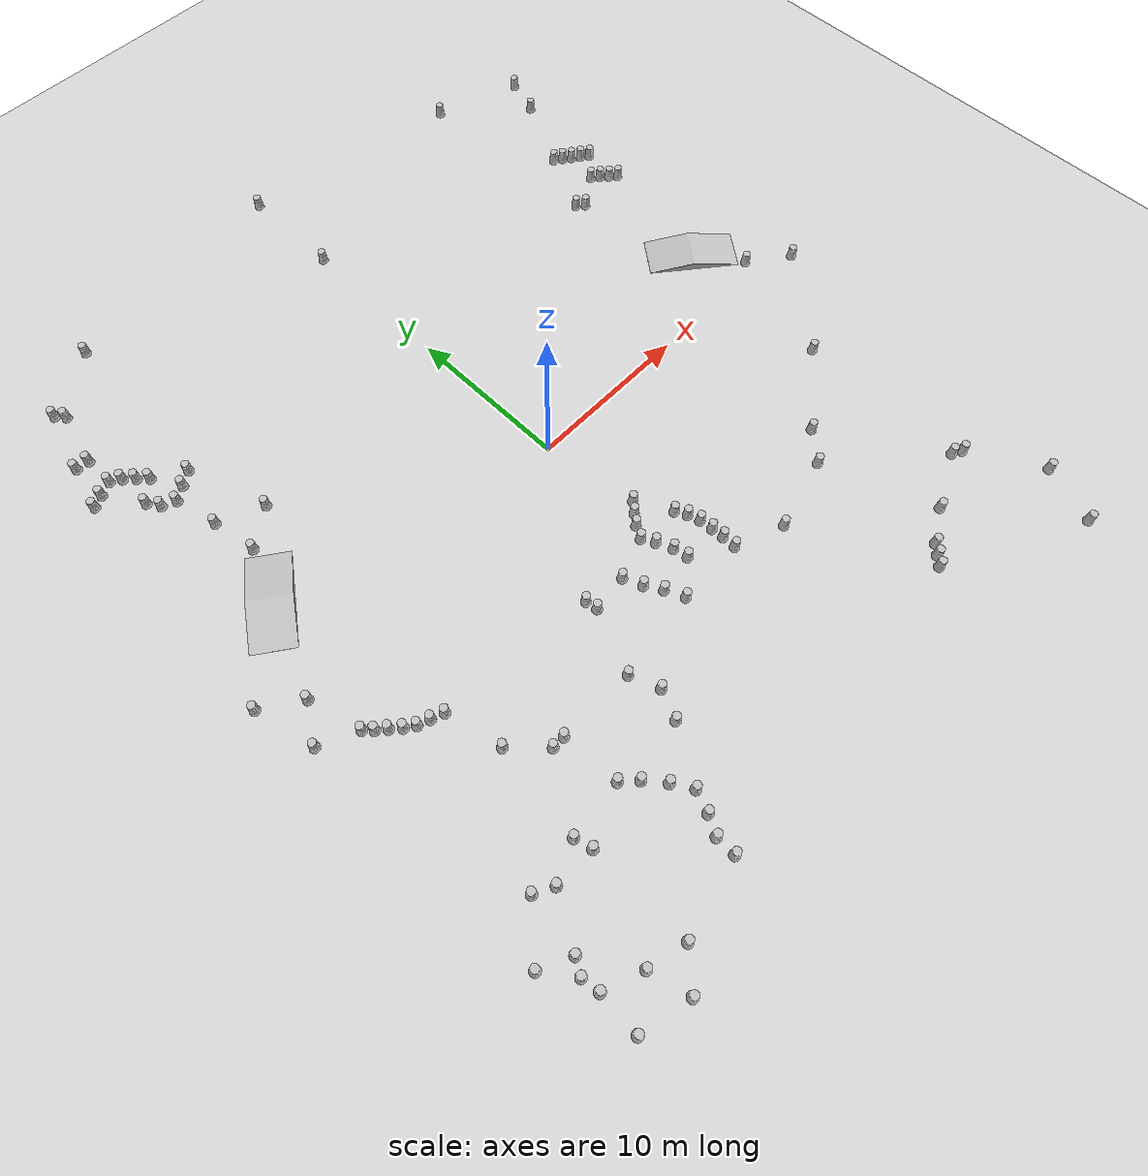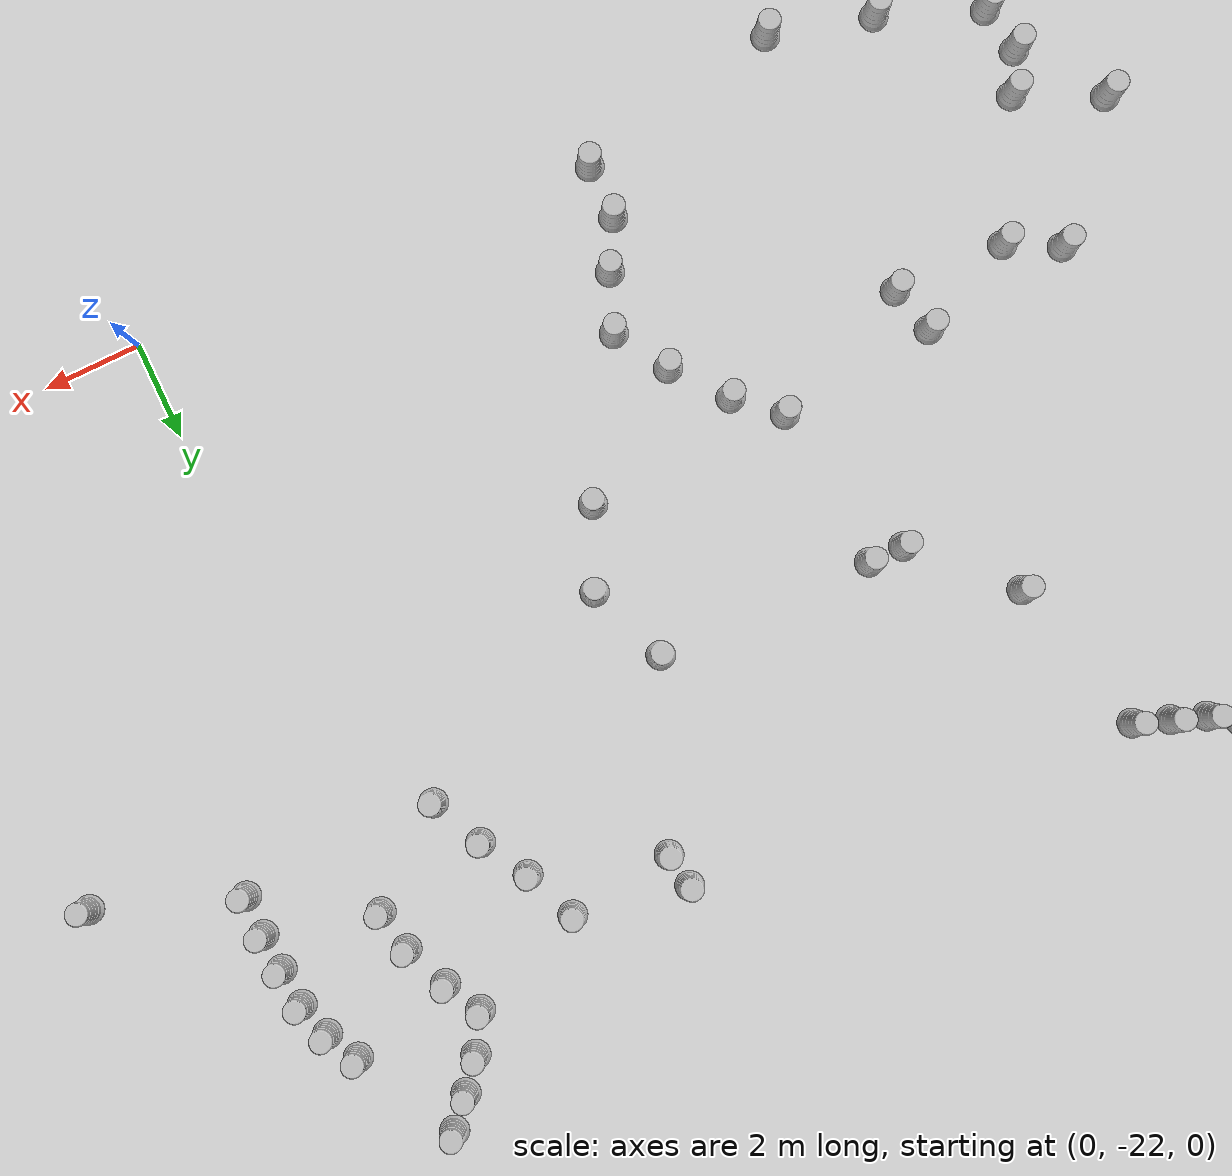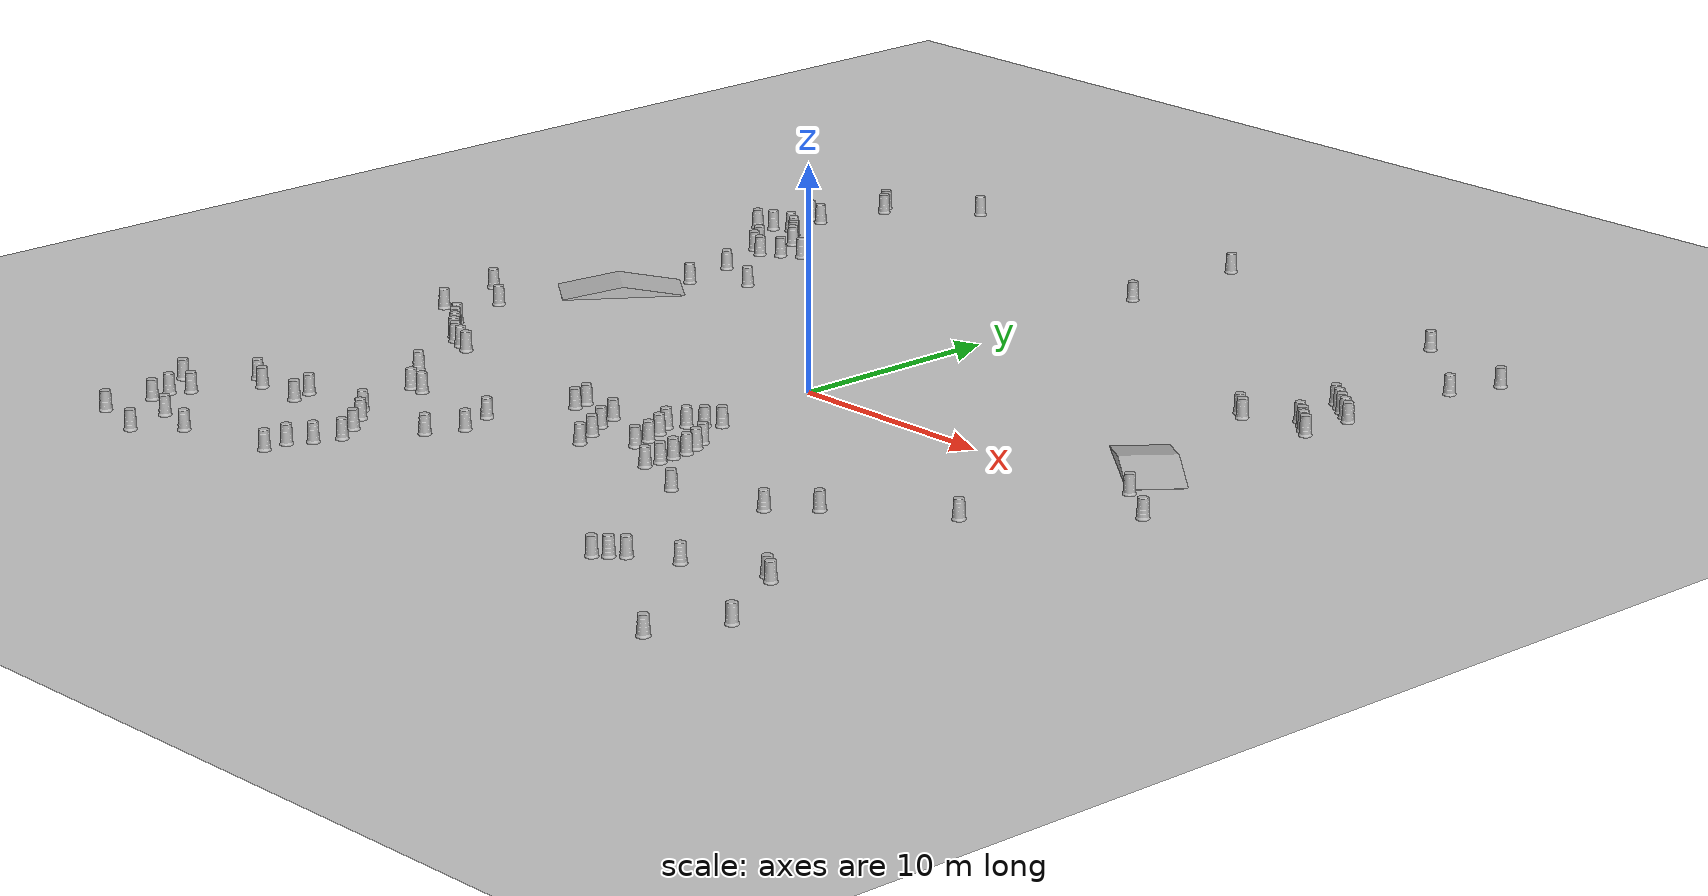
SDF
<?xml version="1.0" ?>
<sdf version="1.4">
  <world name="default">
    <scene>
      <sky>
      </sky>
       <ambient>1.0 1.0 1.0 1.0</ambient>
    </scene>

    <gui>
      <camera name="user_camera">
        <pose>0 42.9 25 0 0.8 -1.57</pose>
      </camera>
    </gui>

    <!-- A global light source -->
    <include>
      <uri>model://urdf/models/sun</uri>
    </include>
    <!-- A ground plane -->
    <include>
      <uri>model://urdf/models/autonav</uri>
    </include> -->
    <!-- ramps -->
    <include>
      <uri>model://urdf/models/ramp</uri>
      <name>ramp_0</name> <!-- THE NAME MUST BE UNIQUE-->
      <pose>16.361 3.674 0 0 -0 -0.670</pose>
    </include>
    <include>
      <uri>model://urdf/models/ramp</uri>
      <name>ramp_1</name> <!-- THE NAME MUST BE UNIQUE-->
      <pose>-16.608 3.804 0 0 -0 0.955</pose>
    </include>
    <!-- barrels_lows -->
    <include>
      <uri>model://urdf/models/barrels_low</uri>
      <name>barrels_low_0</name> <!-- THE NAME MUST BE UNIQUE-->
      <pose>0 19.6 0 0 -0 0</pose>
    </include>
    <include>
      <uri>model://urdf/models/barrels_low</uri>
      <name>barrels_low_1</name> <!-- THE NAME MUST BE UNIQUE-->
      <pose>0 26 0 0 -0 0</pose>
    </include>
    <include>
      <uri>model://urdf/models/barrels_low</uri>
      <name>barrels_low_2</name> <!-- THE NAME MUST BE UNIQUE-->
      <pose>13.787 23.878 0 0 -0 0</pose>
    </include>
    <include>
      <uri>model://urdf/models/barrels_low</uri>
      <name>barrels_low_3</name> <!-- THE NAME MUST BE UNIQUE-->
      <pose>19.181 22.189 0 0 -0 0</pose>
    </include>
    <include>
      <uri>model://urdf/models/barrels_low</uri>
      <name>barrels_low_4</name> <!-- THE NAME MUST BE UNIQUE-->
      <pose>18.388 19.827 0 0 -0 0</pose>
    </include>
    <include>
      <uri>model://urdf/models/barrels_low</uri>
      <name>barrels_low_5</name> <!-- THE NAME MUST BE UNIQUE-->
      <pose>16.033 15.308 0 0 -0 0</pose>
    </include>
    <include>
      <uri>model://urdf/models/barrels_low</uri>
      <name>barrels_low_6</name> <!-- THE NAME MUST BE UNIQUE-->
      <pose>16.514 14.981 0 0 -0 0</pose>
    </include>
    <include>
      <uri>model://urdf/models/barrels_low</uri>
      <name>barrels_low_7</name> <!-- THE NAME MUST BE UNIQUE-->
      <pose>16.988 14.623 0 0 -0 0</pose>
    </include>
    <include>
      <uri>model://urdf/models/barrels_low</uri>
      <name>barrels_low_8</name> <!-- THE NAME MUST BE UNIQUE-->
      <pose>17.482 14.271 0 0 -0 0</pose>
    </include>
    <include>
      <uri>model://urdf/models/barrels_low</uri>
      <name>barrels_low_9</name> <!-- THE NAME MUST BE UNIQUE-->
      <pose>17.963 13.917 0 0 -0 0</pose>
    </include>
    <include>
      <uri>model://urdf/models/barrels_low</uri>
      <name>barrels_low_10</name> <!-- THE NAME MUST BE UNIQUE-->
      <pose>17.932 11.339 0 0 -0 0</pose>
    </include>
    <include>
      <uri>model://urdf/models/barrels_low</uri>
      <name>barrels_low_11</name> <!-- THE NAME MUST BE UNIQUE-->
      <pose>17.489 11.714 0 0 -0 0</pose>
    </include>
    <include>
      <uri>model://urdf/models/barrels_low</uri>
      <name>barrels_low_12</name> <!-- THE NAME MUST BE UNIQUE-->
      <pose>17.053 12.108 0 0 -0 0</pose>
    </include>
    <include>
      <uri>model://urdf/models/barrels_low</uri>
      <name>barrels_low_13</name> <!-- THE NAME MUST BE UNIQUE-->
      <pose>16.587 12.475 0 0 -0 0</pose>
    </include>
    <include>
      <uri>model://urdf/models/barrels_low</uri>
      <name>barrels_low_14</name> <!-- THE NAME MUST BE UNIQUE-->
      <pose>14.138 11.459 0 0 -0 0</pose>
    </include>
    <include>
      <uri>model://urdf/models/barrels_low</uri>
      <name>barrels_low_15</name> <!-- THE NAME MUST BE UNIQUE-->
      <pose>14.620 11.077 0 0 -0 0</pose>
    </include>
    <include>
      <uri>model://urdf/models/barrels_low</uri>
      <name>barrels_low_16</name> <!-- THE NAME MUST BE UNIQUE-->
      <pose>-6.646 -12.089 0 0 -0 0</pose>
    </include>
    <include>
      <uri>model://urdf/models/barrels_low</uri>
      <name>barrels_low_17</name> <!-- THE NAME MUST BE UNIQUE-->
      <pose>-6.015 -13.752 0 0 -0 0</pose>
    </include>
    <include>
      <uri>model://urdf/models/barrels_low</uri>
      <name>barrels_low_18</name> <!-- THE NAME MUST BE UNIQUE-->
      <pose>18.128 0.756 0 0 -0 0</pose>
    </include>
    <include>
      <uri>model://urdf/models/barrels_low</uri>
      <name>barrels_low_19</name> <!-- THE NAME MUST BE UNIQUE-->
      <pose>20.533 -0.955 0 0 -0 0</pose>
    </include>
    <include>
      <uri>model://urdf/models/barrels_low</uri>
      <name>barrels_low_20</name> <!-- THE NAME MUST BE UNIQUE-->
      <pose>15.699 -6.357 0 0 -0 0</pose>
    </include>
    <include>
      <uri>model://urdf/models/barrels_low</uri>
      <name>barrels_low_21</name> <!-- THE NAME MUST BE UNIQUE-->
      <pose>11.253 -9.721 0 0 -0 0</pose>
    </include>
    <include>
      <uri>model://urdf/models/barrels_low</uri>
      <name>barrels_low_22</name> <!-- THE NAME MUST BE UNIQUE-->
      <pose>15.437 -16.289 0 0 -0 0</pose>
    </include>
    <include>
      <uri>model://urdf/models/barrels_low</uri>
      <name>barrels_low_23</name> <!-- THE NAME MUST BE UNIQUE-->
      <pose>15.988 -16.610 0 0 -0 0</pose>
    </include>
    <include>
      <uri>model://urdf/models/barrels_low</uri>
      <name>barrels_low_24</name> <!-- THE NAME MUST BE UNIQUE-->
      <pose>18.360 -20.697 0 0 -0 0</pose>
    </include>
    <include>
      <uri>model://urdf/models/barrels_low</uri>
      <name>barrels_low_25</name> <!-- THE NAME MUST BE UNIQUE-->
      <pose>17.072 -23.944 0 0 -0 0</pose>
    </include>
    <include>
      <uri>model://urdf/models/barrels_low</uri>
      <name>barrels_low_26</name> <!-- THE NAME MUST BE UNIQUE-->
      <pose>12.114 -17.789 0 0 -0 0</pose>
    </include>
    <include>
      <uri>model://urdf/models/barrels_low</uri>
      <name>barrels_low_27</name> <!-- THE NAME MUST BE UNIQUE-->
      <pose>10.155 -18.839 0 0 -0 0</pose>
    </include>
    <include>
      <uri>model://urdf/models/barrels_low</uri>
      <name>barrels_low_28</name> <!-- THE NAME MUST BE UNIQUE-->
      <pose>9.652 -19.311 0 0 -0 0</pose>
    </include>
    <include>
      <uri>model://urdf/models/barrels_low</uri>
      <name>barrels_low_29</name> <!-- THE NAME MUST BE UNIQUE-->
      <pose>9.181 -19.775 0 0 -0 0</pose>
    </include>
    <include>
      <uri>model://urdf/models/barrels_low</uri>
      <name>barrels_low_30</name> <!-- THE NAME MUST BE UNIQUE-->
      <pose>9.742 -11.323 0 0 -0 0</pose>
    </include>
    <include>
      <uri>model://urdf/models/barrels_low</uri>
      <name>barrels_low_31</name> <!-- THE NAME MUST BE UNIQUE-->
      <pose>5.393 -12.401 0 0 -0 0</pose>
    </include>
    <include>
      <uri>model://urdf/models/barrels_low</uri>
      <name>barrels_low_32</name> <!-- THE NAME MUST BE UNIQUE-->
      <pose>2.557 -11.338 0 0 -0 0</pose>
    </include>
    <include>
      <uri>model://urdf/models/barrels_low</uri>
      <name>barrels_low_33</name> <!-- THE NAME MUST BE UNIQUE-->
      <pose>2.567 -10.527 0 0 -0 0</pose>
    </include>
    <include>
      <uri>model://urdf/models/barrels_low</uri>
      <name>barrels_low_34</name> <!-- THE NAME MUST BE UNIQUE-->
      <pose>2.523 -9.782 0 0 -0 0</pose>
    </include>
    <include>
      <uri>model://urdf/models/barrels_low</uri>
      <name>barrels_low_35</name> <!-- THE NAME MUST BE UNIQUE-->
      <pose>2.458 -9.008 0 0 -0 0</pose>
    </include>
    <include>
      <uri>model://urdf/models/barrels_low</uri>
      <name>barrels_low_36</name> <!-- THE NAME MUST BE UNIQUE-->
      <pose>2.246 -8.299 0 0 -0 0</pose>
    </include>
    <include>
      <uri>model://urdf/models/barrels_low</uri>
      <name>barrels_low_37</name> <!-- THE NAME MUST BE UNIQUE-->
      <pose>1.901 -7.644 0 0 -0 0</pose>
    </include>
    <include>
      <uri>model://urdf/models/barrels_low</uri>
      <name>barrels_low_38</name> <!-- THE NAME MUST BE UNIQUE-->
      <pose>0.346 -9.950 0 0 -0 0</pose>
    </include>
    <include>
      <uri>model://urdf/models/barrels_low</uri>
      <name>barrels_low_39</name> <!-- THE NAME MUST BE UNIQUE-->
      <pose>0.195 -9.101 0 0 -0 0</pose>
    </include>
    <include>
      <uri>model://urdf/models/barrels_low</uri>
      <name>barrels_low_40</name> <!-- THE NAME MUST BE UNIQUE-->
      <pose>-0.195 -8.180 0 0 -0 0</pose>
    </include>
    <include>
      <uri>model://urdf/models/barrels_low</uri>
      <name>barrels_low_41</name> <!-- THE NAME MUST BE UNIQUE-->
      <pose>-0.592 -7.453 0 0 -0 0</pose>
    </include>
    <include>
      <uri>model://urdf/models/barrels_low</uri>
      <name>barrels_low_42</name> <!-- THE NAME MUST BE UNIQUE-->
      <pose>-0.151 -6.725 0 0 -0 0</pose>
    </include>
    <include>
      <uri>model://urdf/models/barrels_low</uri>
      <name>barrels_low_43</name> <!-- THE NAME MUST BE UNIQUE-->
      <pose>0.327 -6.152 0 0 -0 0</pose>
    </include>
    <include>
      <uri>model://urdf/models/barrels_low</uri>
      <name>barrels_low_44</name> <!-- THE NAME MUST BE UNIQUE-->
      <pose>0.822 -5.608 0 0 -0 0</pose>
    </include>
    <include>
      <uri>model://urdf/models/barrels_low</uri>
      <name>barrels_low_45</name> <!-- THE NAME MUST BE UNIQUE-->
      <pose>-1.450 -11.406 0 0 -0 0</pose>
    </include>
    <include>
      <uri>model://urdf/models/barrels_low</uri>
      <name>barrels_low_46</name> <!-- THE NAME MUST BE UNIQUE-->
      <pose>-1.947 -10.326 0 0 -0 0</pose>
    </include>
    <include>
      <uri>model://urdf/models/barrels_low</uri>
      <name>barrels_low_47</name> <!-- THE NAME MUST BE UNIQUE-->
      <pose>-2.508 -9.378 0 0 -0 0</pose>
    </include>
    <include>
      <uri>model://urdf/models/barrels_low</uri>
      <name>barrels_low_48</name> <!-- THE NAME MUST BE UNIQUE-->
      <pose>-2.958 -8.311 0 0 -0 0</pose>
    </include>
    <include>
      <uri>model://urdf/models/barrels_low</uri>
      <name>barrels_low_49</name> <!-- THE NAME MUST BE UNIQUE-->
      <pose>-5.127 -8.553 0 0 -0 0</pose>
    </include>
    <include>
      <uri>model://urdf/models/barrels_low</uri>
      <name>barrels_low_50</name> <!-- THE NAME MUST BE UNIQUE-->
      <pose>-5.232 -7.852 0 0 -0 0</pose>
    </include>
    <include>
      <uri>model://urdf/models/barrels_low</uri>
      <name>barrels_low_51</name> <!-- THE NAME MUST BE UNIQUE-->
      <pose>-6.728 -15.316 0 0 -0 0</pose>
    </include>
    <include>
      <uri>model://urdf/models/barrels_low</uri>
      <name>barrels_low_52</name> <!-- THE NAME MUST BE UNIQUE-->
      <pose>-10.898 -15.301 0 0 -0 0</pose>
    </include>
    <include>
      <uri>model://urdf/models/barrels_low</uri>
      <name>barrels_low_53</name> <!-- THE NAME MUST BE UNIQUE-->
      <pose>-10.073 -16.053 0 0 -0 0</pose>
    </include>
    <include>
      <uri>model://urdf/models/barrels_low</uri>
      <name>barrels_low_54</name> <!-- THE NAME MUST BE UNIQUE-->
      <pose>-9.219 -17.113 0 0 -0 0</pose>
    </include>
    <include>
      <uri>model://urdf/models/barrels_low</uri>
      <name>barrels_low_55</name> <!-- THE NAME MUST BE UNIQUE-->
      <pose>-8.555 -18.197 0 0 -0 0</pose>
    </include>
    <include>
      <uri>model://urdf/models/barrels_low</uri>
      <name>barrels_low_56</name> <!-- THE NAME MUST BE UNIQUE-->
      <pose>-9.015 -19.338 0 0 -0 0</pose>
    </include>
    <include>
      <uri>model://urdf/models/barrels_low</uri>
      <name>barrels_low_57</name> <!-- THE NAME MUST BE UNIQUE-->
      <pose>-9.546 -20.302 0 0 -0 0</pose>
    </include>
    <include>
      <uri>model://urdf/models/barrels_low</uri>
      <name>barrels_low_58</name> <!-- THE NAME MUST BE UNIQUE-->
      <pose>-9.569 -21.431 0 0 -0 0</pose>
    </include>
    <include>
      <uri>model://urdf/models/barrels_low</uri>
      <name>barrels_low_59</name> <!-- THE NAME MUST BE UNIQUE-->
      <pose>-13.875 -22.319 0 0 -0 0</pose>
    </include>
    <include>
      <uri>model://urdf/models/barrels_low</uri>
      <name>barrels_low_60</name> <!-- THE NAME MUST BE UNIQUE-->
      <pose>-16.001 -21.750 0 0 -0 0</pose>
    </include>
    <include>
      <uri>model://urdf/models/barrels_low</uri>
      <name>barrels_low_61</name> <!-- THE NAME MUST BE UNIQUE-->
      <pose>-15.407 -23.926 0 0 -0 0</pose>
    </include>
    <include>
      <uri>model://urdf/models/barrels_low</uri>
      <name>barrels_low_62</name> <!-- THE NAME MUST BE UNIQUE-->
      <pose>-18.160 -23.218 0 0 -0 0</pose>
    </include>
    <include>
      <uri>model://urdf/models/barrels_low</uri>
      <name>barrels_low_63</name> <!-- THE NAME MUST BE UNIQUE-->
      <pose>-18.069 -20.910 0 0 -0 0</pose>
    </include>
    <include>
      <uri>model://urdf/models/barrels_low</uri>
      <name>barrels_low_64</name> <!-- THE NAME MUST BE UNIQUE-->
      <pose>-18.222 -19.921 0 0 -0 0</pose>
    </include>
    <include>
      <uri>model://urdf/models/barrels_low</uri>
      <name>barrels_low_65</name> <!-- THE NAME MUST BE UNIQUE-->
      <pose>-17.763 -19.123 0 0 -0 0</pose>
    </include>
    <include>
      <uri>model://urdf/models/barrels_low</uri>
      <name>barrels_low_66</name> <!-- THE NAME MUST BE UNIQUE-->
      <pose>-19.446 -18.306 0 0 -0 0</pose>
    </include>
    <include>
      <uri>model://urdf/models/barrels_low</uri>
      <name>barrels_low_67</name> <!-- THE NAME MUST BE UNIQUE-->
      <pose>-17.311 -15.951 0 0 -0 0</pose>
    </include>
    <include>
      <uri>model://urdf/models/barrels_low</uri>
      <name>barrels_low_68</name> <!-- THE NAME MUST BE UNIQUE-->
      <pose>-16.262 -16.501 0 0 -0 0</pose>
    </include>
    <include>
      <uri>model://urdf/models/barrels_low</uri>
      <name>barrels_low_69</name> <!-- THE NAME MUST BE UNIQUE-->
      <pose>-13.932 -16.579 0 0 -0 0</pose>
    </include>
    <include>
      <uri>model://urdf/models/barrels_low</uri>
      <name>barrels_low_70</name> <!-- THE NAME MUST BE UNIQUE-->
      <pose>-14.197 -15.599 0 0 -0 0</pose>
    </include>
    <include>
      <uri>model://urdf/models/barrels_low</uri>
      <name>barrels_low_71</name> <!-- THE NAME MUST BE UNIQUE-->
      <pose>-11.110 -11.974 0 0 -0 0</pose>
    </include>
    <include>
      <uri>model://urdf/models/barrels_low</uri>
      <name>barrels_low_72</name> <!-- THE NAME MUST BE UNIQUE-->
      <pose>-11.848 -11.966 0 0 -0 0</pose>
    </include>
    <include>
      <uri>model://urdf/models/barrels_low</uri>
      <name>barrels_low_73</name> <!-- THE NAME MUST BE UNIQUE-->
      <pose>-13.557 -10.210 0 0 -0 0</pose>
    </include>
    <include>
      <uri>model://urdf/models/barrels_low</uri>
      <name>barrels_low_74</name> <!-- THE NAME MUST BE UNIQUE-->
      <pose>-14.905 13.208 0 0 -0 0</pose>
    </include>
    <include>
      <uri>model://urdf/models/barrels_low</uri>
      <name>barrels_low_75</name> <!-- THE NAME MUST BE UNIQUE-->
      <pose>-15.701 12.643 0 0 -0 0</pose>
    </include>
    <include>
      <uri>model://urdf/models/barrels_low</uri>
      <name>barrels_low_76</name> <!-- THE NAME MUST BE UNIQUE-->
      <pose>-16.487 12.075 0 0 -0 0</pose>
    </include>
    <include>
      <uri>model://urdf/models/barrels_low</uri>
      <name>barrels_low_77</name> <!-- THE NAME MUST BE UNIQUE-->
      <pose>-17.260 12.433 0 0 -0 0</pose>
    </include>
    <include>
      <uri>model://urdf/models/barrels_low</uri>
      <name>barrels_low_78</name> <!-- THE NAME MUST BE UNIQUE-->
      <pose>-17.738 13.150 0 0 -0 0</pose>
    </include>
    <include>
      <uri>model://urdf/models/barrels_low</uri>
      <name>barrels_low_79</name> <!-- THE NAME MUST BE UNIQUE-->
      <pose>-16.675 14.280 0 0 -0 0</pose>
    </include>
    <include>
      <uri>model://urdf/models/barrels_low</uri>
      <name>barrels_low_80</name> <!-- THE NAME MUST BE UNIQUE-->
      <pose>-17.220 14.819 0 0 -0 0</pose>
    </include>
    <include>
      <uri>model://urdf/models/barrels_low</uri>
      <name>barrels_low_81</name> <!-- THE NAME MUST BE UNIQUE-->
      <pose>-17.774 15.348 0 0 -0 0</pose>
    </include>
    <include>
      <uri>model://urdf/models/barrels_low</uri>
      <name>barrels_low_82</name> <!-- THE NAME MUST BE UNIQUE-->
      <pose>-18.371 15.709 0 0 -0 0</pose>
    </include>
    <include>
      <uri>model://urdf/models/barrels_low</uri>
      <name>barrels_low_83</name> <!-- THE NAME MUST BE UNIQUE-->
      <pose>-19.155 15.313 0 0 -0 0</pose>
    </include>
    <include>
      <uri>model://urdf/models/barrels_low</uri>
      <name>barrels_low_84</name> <!-- THE NAME MUST BE UNIQUE-->
      <pose>-19.832 14.947 0 0 -0 0</pose>
    </include>
    <include>
      <uri>model://urdf/models/barrels_low</uri>
      <name>barrels_low_85</name> <!-- THE NAME MUST BE UNIQUE-->
      <pose>-18.418 17.637 0 0 -0 0</pose>
    </include>
    <include>
      <uri>model://urdf/models/barrels_low</uri>
      <name>barrels_low_86</name> <!-- THE NAME MUST BE UNIQUE-->
      <pose>-19.178 17.690 0 0 -0 0</pose>
    </include>
    <include>
      <uri>model://urdf/models/barrels_low</uri>
      <name>barrels_low_87</name> <!-- THE NAME MUST BE UNIQUE-->
      <pose>-17.666 21.003 0 0 -0 0</pose>
    </include>
    <include>
      <uri>model://urdf/models/barrels_low</uri>
      <name>barrels_low_88</name> <!-- THE NAME MUST BE UNIQUE-->
      <pose>-18.109 21.543 0 0 -0 0</pose>
    </include>
    <include>
      <uri>model://urdf/models/barrels_low</uri>
      <name>barrels_low_89</name> <!-- THE NAME MUST BE UNIQUE-->
      <pose>-14.324 24.075 0 0 -0 0</pose>
    </include>
    <include>
      <uri>model://urdf/models/barrels_low</uri>
      <name>barrels_low_90</name> <!-- THE NAME MUST BE UNIQUE-->
      <pose>-15.872 9.495 0 0 -0 0</pose>
    </include>
    <include>
      <uri>model://urdf/models/barrels_low</uri>
      <name>barrels_low_91</name> <!-- THE NAME MUST BE UNIQUE-->
      <pose>-13.266 8.423 0 0 -0 0</pose>
    </include>
    <include>
      <uri>model://urdf/models/barrels_low</uri>
      <name>barrels_low_92</name> <!-- THE NAME MUST BE UNIQUE-->
      <pose>-15.389 6.831 0 0 -0 0</pose>
    </include>
    <include>
      <uri>model://urdf/models/barrels_low</uri>
      <name>barrels_low_93</name> <!-- THE NAME MUST BE UNIQUE-->
      <pose>-20.761 -0.194 0 0 -0 0</pose>
    </include>
    <include>
      <uri>model://urdf/models/barrels_low</uri>
      <name>barrels_low_94</name> <!-- THE NAME MUST BE UNIQUE-->
      <pose>-18.601 -1.647 0 0 -0 0</pose>
    </include>
    <include>
      <uri>model://urdf/models/barrels_low</uri>
      <name>barrels_low_95</name> <!-- THE NAME MUST BE UNIQUE-->
      <pose>-19.876 -3.735 0 0 -0 0</pose>
    </include>
    <include>
      <uri>model://urdf/models/barrels_low</uri>
      <name>barrels_low_96</name> <!-- THE NAME MUST BE UNIQUE-->
      <pose>-17.743 -4.719 0 0 -0 0</pose>
    </include>
    <include>
      <uri>model://urdf/models/barrels_low</uri>
      <name>barrels_low_97</name> <!-- THE NAME MUST BE UNIQUE-->
      <pose>-17.299 -5.169 0 0 -0 0</pose>
    </include>
    <include>
      <uri>model://urdf/models/barrels_low</uri>
      <name>barrels_low_98</name> <!-- THE NAME MUST BE UNIQUE-->
      <pose>-16.793 -5.601 0 0 -0 0</pose>
    </include>
    <include>
      <uri>model://urdf/models/barrels_low</uri>
      <name>barrels_low_99</name> <!-- THE NAME MUST BE UNIQUE-->
      <pose>-16.253 -6.087 0 0 -0 0</pose>
    </include>
    <include>
      <uri>model://urdf/models/barrels_low</uri>
      <name>barrels_low_100</name> <!-- THE NAME MUST BE UNIQUE-->
      <pose>-15.706 -6.467 0 0 -0 0</pose>
    </include>
    <include>
      <uri>model://urdf/models/barrels_low</uri>
      <name>barrels_low_101</name> <!-- THE NAME MUST BE UNIQUE-->
      <pose>-15.036 -6.713 0 0 -0 0</pose>
    </include>
    <include>
      <uri>model://urdf/models/barrels_low</uri>
      <name>barrels_low_102</name> <!-- THE NAME MUST BE UNIQUE-->
      <pose>-14.330 -6.974 0 0 -0 0</pose>
    </include>
    <physics type="simbody">
      <max_step_size>0.002</max_step_size>
      <real_time_update_rate>500</real_time_update_rate>
    </physics>
  </world>
</sdf>

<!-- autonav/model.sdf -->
<sdf version="1.5">
  <model name="autonav_plane">
    <static>true</static>
    <link name="link">
      <collision name="collision">
        <geometry>
          <plane>
            <normal>0 0 1</normal>
            <size>64 64</size>
          </plane>
        </geometry>
        <surface>
          <friction>
            <ode>
              <mu>100</mu>
              <mu2>50</mu2>
            </ode>
          </friction>
        </surface>
      </collision>
      <visual name="visual">
        <cast_shadows>false</cast_shadows>
        <geometry>
          <plane>
            <normal>0 0 1</normal>
            <size>64 64</size>
          </plane>
        </geometry>
        <material>
          <script>
            <uri>model://urdf/gazebo.material</uri>
            <name>Gazebo/Texture_autonav</name>
          </script>
        </material>
      </visual>
    </link>
  </model>
</sdf>

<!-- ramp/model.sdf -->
<sdf version="1.5">
  <model name='ramp'>
    <static>true</static>
    <link name='link'>
      <collision name='collision'>
        <geometry>
          <mesh>
            <uri>model://ramp/meshes/ramp.dae</uri>
            <scale>1 1 1</scale>
          </mesh>
        </geometry>
        <max_contacts>10</max_contacts>
        <surface>
          <friction>
            <ode>
              <mu>100</mu>
              <mu2>50</mu2>
            </ode>
          </friction>
        </surface>
      </collision>
      <visual name='visual'>
        <geometry>
          <mesh>
            <uri>model://ramp/meshes/ramp.dae</uri>
            <scale>1 1 1</scale>
          </mesh>
        </geometry>
      </visual>
      <self_collide>0</self_collide>
      <kinematic>0</kinematic>
    </link>
  </model>
</sdf>

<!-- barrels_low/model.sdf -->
<sdf version="1.5">
  <model name='construction_barrel'>
    <link name='link'>
      <gravity>1</gravity>
      <inertial>
        <mass>500</mass>
        <inertia>
          <ixx>51.2096</ixx>
          <iyy>51.2096</iyy>
          <izz>25</izz>
          <ixy>0</ixy>
          <ixz>0</ixz>
          <iyz>0</iyz>
        </inertia>
      </inertial>
      <collision name='collision'>
        <pose> 0 0 0.5 0 0 0 </pose>
        <geometry>
           <cylinder>
             <radius>0.3</radius>
             <length>1.0</length>
           </cylinder>
        </geometry>
        <max_contacts>10</max_contacts>
        <surface>
          <contact>
            <ode/>
          </contact>
          <bounce/>
          <friction>
            <torsional>
              <ode/>
            </torsional>
            <ode/>
          </friction>
        </surface>
      </collision>
      <visual name='visual'>
        <geometry>
          <mesh>
            <uri>model://barrel/meshes/barrel.dae</uri>
            <scale>1 1 1</scale>
          </mesh>
        </geometry>
      </visual>
      <self_collide>0</self_collide>
      <kinematic>0</kinematic>
    </link>
  </model>
</sdf>
